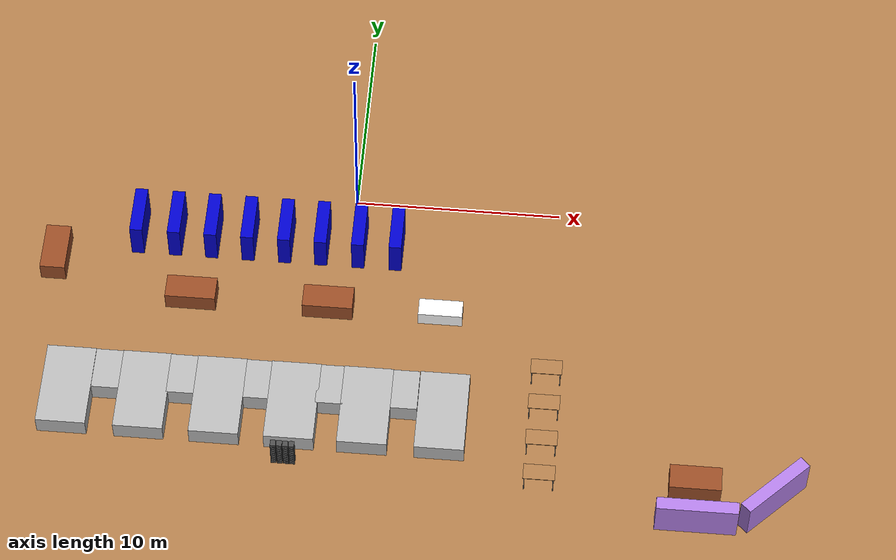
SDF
<sdf version="1.10">
 <world name="empty">
  <physics name="1ms" type="ignored">
   <max_step_size>0.003</max_step_size>
   <real_time_factor>1</real_time_factor>
   <real_time_update_rate>333</real_time_update_rate>
  </physics>
  <plugin name="gz::sim::systems::Physics" filename="gz-sim-physics-system"/>
  <plugin name="gz::sim::systems::UserCommands" filename="gz-sim-user-commands-system"/>
  <plugin name="gz::sim::systems::SceneBroadcaster" filename="gz-sim-scene-broadcaster-system"/>
  <plugin name="gz::sim::systems::Contact" filename="gz-sim-contact-system"/>
  <plugin name="gz::sim::systems::Sensors" filename="gz-sim-sensors-system">
   <render_engine>ogre2</render_engine>
   <background_color>0.8 0.8 0.8</background_color>
   <enable_shadows>false</enable_shadows>
  </plugin>
  <gravity>0 0 -9.8</gravity>
  <magnetic_field>5.5645e-06 2.28758e-05 -4.23884e-05</magnetic_field>
  <atmosphere type="adiabatic"/>
  <scene>
   <ambient>0.4 0.4 0.4 1</ambient>
   <background>0.7 0.7 0.7 1</background>
   <shadows>false</shadows>
   <grid>false</grid>
  </scene>
  <light name="world_sun" type="directional">
   <pose>0 0 10 0 0 0</pose>
   <cast_shadows>false</cast_shadows>
   <intensity>1.0</intensity>
   <direction>-0.5 0.1 -0.9</direction>
   <diffuse>0.8 0.8 0.8 1</diffuse>
   <specular>0.2 0.2 0.2 1</specular>
  </light>
  <model name="ground_plane">
   <static>true</static>
   <link name="link">
    <collision name="collision">
     <geometry><plane><normal>0 0 1</normal><size>100 100</size></plane></geometry>
    </collision>
    <visual name="visual">
     <geometry><plane><normal>0 0 1</normal><size>100 100</size></plane></geometry>
     <material>
      <script><uri>file://media/materials/scripts/gazebo.material</uri><name>Gazebo/Wood</name></script>
     </material>
    </visual>
    <inertial>
     <mass>1</mass>
     <inertia><ixx>1</ixx><ixy>0</ixy><ixz>0</ixz><iyy>1</iyy><iyz>0</iyz><izz>1</izz></inertia>
    </inertial>
   </link>
  </model>
  <model name="systembox_right_0">
   <pose>5.14 -12.2 0.49999933294646554 0 0 0</pose>
   <link name="box_link">
    <collision name="box_collision"><geometry><box><size>2.363 4.171 1</size></box></geometry></collision>
    <visual name="box_visual"><geometry><box><size>2.363 4.171 1</size></box></geometry></visual>
   </link>
   <static>true</static>
  </model>
  <model name="systembox_mid_0">
   <pose>3.29 -11.19 0.49999933294646554 0 0 0</pose>
   <link name="box_link">
    <collision name="box_collision"><geometry><box><size>1.3 2.1 1</size></box></geometry></collision>
    <visual name="box_visual"><geometry><box><size>1.3 2.1 1</size></box></geometry></visual>
   </link>
   <static>true</static>
  </model>
  <model name="systembox_left_0">
   <pose>1.49 -12.2 0.49999933294646554 0 0 0</pose>
   <link name="box_link">
    <collision name="box_collision"><geometry><box><size>2.363 4.171 1</size></box></geometry></collision>
    <visual name="box_visual"><geometry><box><size>2.363 4.171 1</size></box></geometry></visual>
   </link>
   <static>true</static>
  </model>
  <model name="systembox_junction_0">
   <pose>-0.25 -11.19 0.49999933294646554 0 0 0</pose>
   <link name="box_link">
    <collision name="box_collision"><geometry><box><size>1.3 2.1 1</size></box></geometry></collision>
    <visual name="box_visual"><geometry><box><size>1.3 2.1 1</size></box></geometry></visual>
   </link>
   <static>true</static>
  </model>
  <model name="systembox_right_1">
   <pose>-1.97 -12.2 0.49999933294646554 0 0 0</pose>
   <link name="box_link">
    <collision name="box_collision"><geometry><box><size>2.363 4.171 1</size></box></geometry></collision>
    <visual name="box_visual"><geometry><box><size>2.363 4.171 1</size></box></geometry></visual>
   </link>
   <static>true</static>
  </model>
  <model name="systembox_mid_1">
   <pose>-3.7 -11.19 0.49999933294646554 0 0 0</pose>
   <link name="box_link">
    <collision name="box_collision"><geometry><box><size>1.3 2.1 1</size></box></geometry></collision>
    <visual name="box_visual"><geometry><box><size>1.3 2.1 1</size></box></geometry></visual>
   </link>
   <static>true</static>
  </model>
  <model name="systembox_left_1">
   <pose>-5.52 -12.2 0.49999933294646554 0 0 0</pose>
   <link name="box_link">
    <collision name="box_collision"><geometry><box><size>2.363 4.171 1</size></box></geometry></collision>
    <visual name="box_visual"><geometry><box><size>2.363 4.171 1</size></box></geometry></visual>
   </link>
   <static>true</static>
  </model>
  <model name="systembox_junction_1">
   <pose>-7.35 -11.19 0.49999933294646554 0 0 0</pose>
   <link name="box_link">
    <collision name="box_collision"><geometry><box><size>1.3 2.1 1</size></box></geometry></collision>
    <visual name="box_visual"><geometry><box><size>1.3 2.1 1</size></box></geometry></visual>
   </link>
   <static>true</static>
  </model>
  <model name="systembox_right_2">
   <pose>-9.11 -12.2 0.49999933294646554 0 0 0</pose>
   <link name="box_link">
    <collision name="box_collision"><geometry><box><size>2.363 4.171 1</size></box></geometry></collision>
    <visual name="box_visual"><geometry><box><size>2.363 4.171 1</size></box></geometry></visual>
   </link>
   <static>true</static>
  </model>
  <model name="systembox_mid_2">
   <pose>-10.94 -11.19 0.49999933294646554 0 0 0</pose>
   <link name="box_link">
    <collision name="box_collision"><geometry><box><size>1.3 2.1 1</size></box></geometry></collision>
    <visual name="box_visual"><geometry><box><size>1.3 2.1 1</size></box></geometry></visual>
   </link>
   <static>true</static>
  </model>
  <model name="systembox_left_2">
   <pose>-12.78 -12.2 0.49999933294646554 0 0 0</pose>
   <link name="box_link">
    <collision name="box_collision"><geometry><box><size>2.363 4.171 1</size></box></geometry></collision>
    <visual name="box_visual"><geometry><box><size>2.363 4.171 1</size></box></geometry></visual>
   </link>
   <static>true</static>
  </model>
  <include>
   <name>psr_09</name>
   <pose>-1.69 -15.25 1.03 0 0 1.57</pose>
   <uri>file:///home/meditab/car_ws_new/src/hey_agv_new/urdf/psr.sdf</uri>
  </include>
  <include>
   <name>psr_10</name>
   <pose>-1.98 -15.25 1.03 0 0 1.57</pose>
   <uri>file:///home/meditab/car_ws_new/src/hey_agv_new/urdf/psr.sdf</uri>
  </include>
  <include>
   <name>psr_11</name>
   <pose>-2.27 -15.25 1.03 0 0 1.57</pose>
   <uri>file:///home/meditab/car_ws_new/src/hey_agv_new/urdf/psr.sdf</uri>
  </include>
  <include>
   <name>psr_12</name>
   <pose>-2.56 -15.25 1.03 0 0 1.57</pose>
   <uri>file:///home/meditab/car_ws_new/src/hey_agv_new/urdf/psr.sdf</uri>
  </include>
  <include>
   <name>table_1</name>
   <pose>9.91 -9.38 0 0 0 0</pose>
   <uri>file:///home/meditab/car_ws_new/src/hey_agv_new/urdf/table.sdf</uri>
  </include>
  <include>
   <name>table_2</name>
   <pose>9.91 -11.33 0 0 0 0</pose>
   <uri>file:///home/meditab/car_ws_new/src/hey_agv_new/urdf/table.sdf</uri>
  </include>
  <include>
   <name>table_3</name>
   <pose>9.91 -13.29 0 0 0 0</pose>
   <uri>file:///home/meditab/car_ws_new/src/hey_agv_new/urdf/table.sdf</uri>
  </include>
  <include>
   <name>table_4</name>
   <pose>9.91 -15.17 0 0 0 0</pose>
   <uri>file:///home/meditab/car_ws_new/src/hey_agv_new/urdf/table.sdf</uri>
  </include>
  <include>
   <name>irack_1</name>
   <pose>2.18 -2.61 0 0 0 0</pose>
   <uri>file:///home/meditab/car_ws_new/src/hey_agv_new/urdf/inventory_rack.sdf</uri>
  </include>
  <include>
   <name>irack_2</name>
   <pose>0.35 -2.61 0 0 0 0</pose>
   <uri>file:///home/meditab/car_ws_new/src/hey_agv_new/urdf/inventory_rack.sdf</uri>
  </include>
  <include>
   <name>irack_3</name>
   <pose>-1.48 -2.61 0 0 0 0</pose>
   <uri>file:///home/meditab/car_ws_new/src/hey_agv_new/urdf/inventory_rack.sdf</uri>
  </include>
  <include>
   <name>irack_4</name>
   <pose>-3.26 -2.61 0 0 0 0</pose>
   <uri>file:///home/meditab/car_ws_new/src/hey_agv_new/urdf/inventory_rack.sdf</uri>
  </include>
  <include>
   <name>irack_5</name>
   <pose>-5.06 -2.61 0 0 0 0</pose>
   <uri>file:///home/meditab/car_ws_new/src/hey_agv_new/urdf/inventory_rack.sdf</uri>
  </include>
  <include>
   <name>irack_6</name>
   <pose>-6.86 -2.61 0 0 0 0</pose>
   <uri>file:///home/meditab/car_ws_new/src/hey_agv_new/urdf/inventory_rack.sdf</uri>
  </include>
  <include>
   <name>irack_7</name>
   <pose>-8.65 -2.61 0 0 0 0</pose>
   <uri>file:///home/meditab/car_ws_new/src/hey_agv_new/urdf/inventory_rack.sdf</uri>
  </include>
  <include>
   <name>irack_8</name>
   <pose>-10.49 -2.61 0 0 0 0</pose>
   <uri>file:///home/meditab/car_ws_new/src/hey_agv_new/urdf/inventory_rack.sdf</uri>
  </include>
  <include>
   <name>tdesk_1</name>
   <pose>-0.86 -6.25 0 0 0 0</pose>
   <uri>file:///home/meditab/car_ws_new/src/hey_agv_new/urdf/technical_desk.sdf</uri>
  </include>
  <include>
   <name>tdesk_2</name>
   <pose>-7.53 -6.25 0 0 0 0</pose>
   <uri>file:///home/meditab/car_ws_new/src/hey_agv_new/urdf/technical_desk.sdf</uri>
  </include>
  <include>
   <name>csr_store</name>
   <pose>-14.42 -4.44 0 0 0 -1.57</pose>
   <uri>file:///home/meditab/car_ws_new/src/hey_agv_new/urdf/technical_desk.sdf</uri>
  </include>
  <include>
   <name>deldesk_2</name>
   <pose>17.21 -14.84 0 0 0 0</pose>
   <uri>file:///home/meditab/car_ws_new/src/hey_agv_new/urdf/technical_desk.sdf</uri>
  </include>
  <include>
   <name>pcdesk_2</name>
   <pose>4.61 -6.33 0 0 0 0</pose>
   <uri>file:///home/meditab/car_ws_new/src/hey_agv_new/urdf/pvc_desk.sdf</uri>
  </include>
  <include>
   <name>del_shelf</name>
   <pose>20.85 -15.50 0 0 0 0.78</pose>
   <uri>file:///home/meditab/car_ws_new/src/hey_agv_new/urdf/delivery_shelf.sdf</uri>
  </include>
  <include>
   <name>del_ref_shelf</name>
   <pose>17.30 -16.90 0 0 0 0</pose>
   <uri>file:///home/meditab/car_ws_new/src/hey_agv_new/urdf/delivery_shelf.sdf</uri>
  </include>
 </world>
</sdf>

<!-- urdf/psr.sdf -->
<sdf version="1.8">
  <model name="psr" canonical_link="psr_link">
    <static>false</static>
    <link name="psr_link">
      <pose>0.1435 0 0 1.5708 0 -1.5708</pose>

        <inertial>
            <mass>6.0</mass>
            <inertia>
            <ixx>2.2</ixx>
            <ixy>0</ixy>
            <ixz>0</ixz>
            <iyy>0.2</iyy>
            <iyz>0</iyz>
            <izz>2.24</izz>
            </inertia>
        </inertial>
      <!-- Visual representation using your DAE file -->
      <visual name="visual">
       <pose>0 0 -0.1435 0 0 0</pose>
        <geometry>
          <mesh>
            <uri>file:///home/meditab/Desktop/agv_ws/src/hey_agv/urdf/PSR_Mock_psr.dae</uri>
            <scale>1 1 1</scale>
          </mesh>
        </geometry>
      </visual>

      <!-- Collision geometry - enabled for static model -->
      <collision name="collision">
        <pose>0 0 -0.1435 0 0 0</pose>
        <geometry>
          <mesh>
            <uri>file:///home/meditab/Desktop/agv_ws/src/hey_agv/urdf/PSR_Mock_psr.dae</uri>
            <scale>1 1 1</scale>
          </mesh>
        </geometry>
        <surface>
          <contact>
            <collide_bitmask>0x01</collide_bitmask>
          </contact>
          <friction>
            <ode>
              <mu>0.1</mu>
              <mu2>0.1</mu2>
            </ode>
          </friction>
        </surface>
      </collision>
    </link>
  </model>
</sdf>

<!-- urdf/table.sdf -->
<sdf version="1.6">
  <model name="table">
    <static>true</static>
    <link name="link">
      <collision name="surface">
        <pose>0 0 1.0 0 0 0</pose>
        <geometry>
          <box>
            <size>1.5 0.8 0.03</size>
          </box>
        </geometry>
        <surface>
          <friction>
            <ode>
              <mu>0.6</mu>
              <mu2>0.6</mu2>
            </ode>
          </friction>
        </surface>
      </collision>
      <visual name="visual1">
        <pose>0 0 1.0 0 0 0</pose>
        <geometry>
          <box>
            <size>1.5 0.8 0.03</size>
          </box>
        </geometry>
        <material>
          <script>
            <uri>file://media/materials/scripts/gazebo.material</uri>
            <name>Gazebo/Wood</name>
          </script>
        </material>
      </visual>
      <collision name="front_left_leg">
        <pose>0.68 0.38 0.5 0 0 0</pose>
        <geometry>
          <cylinder>
            <radius>0.02</radius>
            <length>1.0</length>
          </cylinder>
        </geometry>
      </collision>
      <visual name="front_left_leg">
        <pose>0.68 0.38 0.5 0 0 0</pose>
        <geometry>
          <cylinder>
            <radius>0.02</radius>
            <length>1.0</length>
          </cylinder>
        </geometry>
        <material>
          <script>
            <uri>file://media/materials/scripts/gazebo.material</uri>
            <name>Gazebo/Grey</name>
          </script>
        </material>
      </visual>
      <collision name="front_right_leg">
        <pose>0.68 -0.38 0.5 0 0 0</pose>
        <geometry>
          <cylinder>
            <radius>0.02</radius>
            <length>1.0</length>
          </cylinder>
        </geometry>
      </collision>
      <visual name="front_right_leg">
        <pose>0.68 -0.38 0.5 0 0 0</pose>
        <geometry>
          <cylinder>
            <radius>0.02</radius>
            <length>1.0</length>
          </cylinder>
        </geometry>
        <material>
          <script>
            <uri>file://media/materials/scripts/gazebo.material</uri>
            <name>Gazebo/Grey</name>
          </script>
        </material>
      </visual>
      <collision name="back_right_leg">
        <pose>-0.68 -0.38 0.5 0 0 0</pose>
        <geometry>
          <cylinder>
            <radius>0.02</radius>
            <length>1.0</length>
          </cylinder>
        </geometry>
      </collision>
      <visual name="back_right_leg">
        <pose>-0.68 -0.38 0.5 0 0 0</pose>
        <geometry>
          <cylinder>
            <radius>0.02</radius>
            <length>1.0</length>
          </cylinder>
        </geometry>
        <material>
          <script>
            <uri>file://media/materials/scripts/gazebo.material</uri>
            <name>Gazebo/Grey</name>
          </script>
        </material>
      </visual>
      <collision name="back_left_leg">
        <pose>-0.68 0.38 0.5 0 0 0</pose>
        <geometry>
          <cylinder>
            <radius>0.02</radius>
            <length>1.0</length>
          </cylinder>
        </geometry>
      </collision>
      <visual name="back_left_leg">
        <pose>-0.68 0.38 0.5 0 0 0</pose>
        <geometry>
          <cylinder>
            <radius>0.02</radius>
            <length>1.0</length>
          </cylinder>
        </geometry>
        <material>
          <script>
            <uri>file://media/materials/scripts/gazebo.material</uri>
            <name>Gazebo/Grey</name>
          </script>
        </material>
      </visual>
    </link>
  </model>
</sdf>

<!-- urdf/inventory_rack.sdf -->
<sdf version="1.7">
  <model name="inventory_rack">
    <static>true</static>
    <link name="rack_link">
      <pose>0 0 1 0 0 0</pose>
      <collision name="rack_collision">
        <geometry>
          <box>
            <size>0.6096 2.4384  2.0</size>
          </box>
        </geometry>
      </collision>
      <visual name="rack_visual">
        <geometry>
          <box>
            <size>0.6096 2.4384 2.0</size>
          </box>
        </geometry>
         <material>
          <ambient>0.0 0.0 0.5 1</ambient>
          <diffuse>0.0 0.0 0.8 1</diffuse>
          <specular>0.2 0.2 0.4 1</specular>
        </material>
      </visual>
      <inertial>
        <mass>100</mass>
        <inertia>
          <ixx>33.89</ixx>
          <ixy>0</ixy>
          <ixz>0</ixz>
          <iyy>133.6</iyy>
          <iyz>0</iyz>
          <izz>166.7</izz>
        </inertia>
      </inertial>
    </link>
  </model>
</sdf>

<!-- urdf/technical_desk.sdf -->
<sdf version="1.7">
  <model name="technical_desk">
    <static>true</static>
    <link name="desk_link">
      <pose>0 0 0.5 0 0 0</pose>
      <collision name="desk_collision">
        <geometry>
          <box>
            <size>2.4384 1.2192 1.0</size>
          </box>
        </geometry>
      </collision>
      <visual name="desk_visual">
        <geometry>
          <box>
            <size>2.4384 1.2192 1.0</size>
          </box>
        </geometry>
        <material>
          <ambient>0.4 0.2 0.1 1</ambient>
          <diffuse>0.6 0.3 0.15 1</diffuse>
          <specular>0.1 0.1 0.1 1</specular>
        </material>
      </visual>
      <inertial>
        <mass>50</mass>
        <inertia>
          <ixx>5.76</ixx>
          <ixy>0</ixy>
          <ixz>0</ixz>
          <iyy>24.93</iyy>
          <iyz>0</iyz>
          <izz>30.56</izz>
        </inertia>
      </inertial>
    </link>
  </model>
</sdf>

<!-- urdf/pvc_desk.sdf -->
<sdf version="1.7">
  <model name="pvc_desk">
    <static>true</static>
    <link name="desk_link">
      <pose>0 0 0.4 0 0 0</pose>
      <collision name="desk_collision">
        <geometry>
          <box>
            <size>2.1336 0.9144 0.8</size>
          </box>
        </geometry>
      </collision>
      <visual name="desk_visual">
        <geometry>
          <box>
            <size>2.1336 0.9144 0.8</size>
          </box>
        </geometry>
        <material>
          <ambient>0.9 0.9 0.9 1</ambient>
          <diffuse>1.0 1.0 1.0 1</diffuse>
          <specular>0.3 0.3 0.3 1</specular>
        </material>
      </visual>
      <inertial>
        <mass>20</mass>
        <inertia>
          <ixx>1.25</ixx>
          <ixy>0</ixy>
          <ixz>0</ixz>
          <iyy>7.68</iyy>
          <iyz>0</iyz>
          <izz>8.65</izz>
        </inertia>
      </inertial>
    </link>
  </model>
</sdf>

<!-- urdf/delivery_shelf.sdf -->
<sdf version="1.7">
  <model name="delivery_shelf">
    <static>true</static>
    <link name="shelf_link">
      <pose>0 0 1 0 0 0</pose>
      <collision name="shelf_collision">
        <geometry>
          <box>
            <size>3.81 0.6096 2.0</size>
          </box>
        </geometry>
      </collision>
      <visual name="shelf_visual">
        <geometry>
          <box>
            <size>3.81 0.6096 2.0</size>
          </box>
        </geometry>
        <material>
          <ambient>0.6 0.4 0.8 1</ambient>
          <diffuse>0.7 0.5 0.9 1</diffuse>
          <specular>0.3 0.2 0.4 1</specular>
        </material>
      </visual>
      <inertial>
        <mass>80</mass>
        <inertia>
          <ixx>27.12</ixx>
          <ixy>0</ixy>
          <ixz>0</ixz>
          <iyy>98.46</iyy>
          <iyz>0</iyz>
          <izz>124.89</izz>
        </inertia>
      </inertial>
    </link>
  </model>
</sdf>
